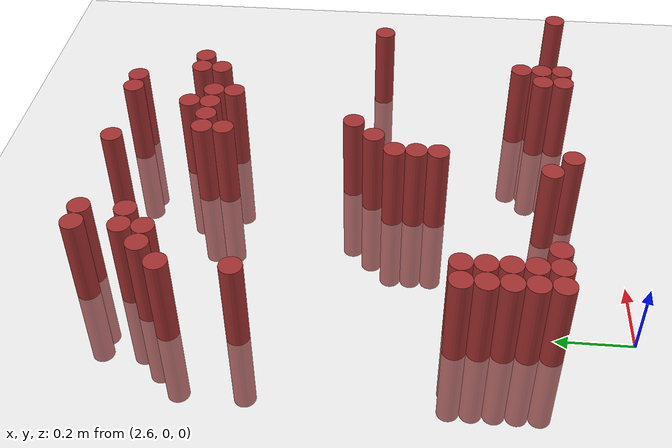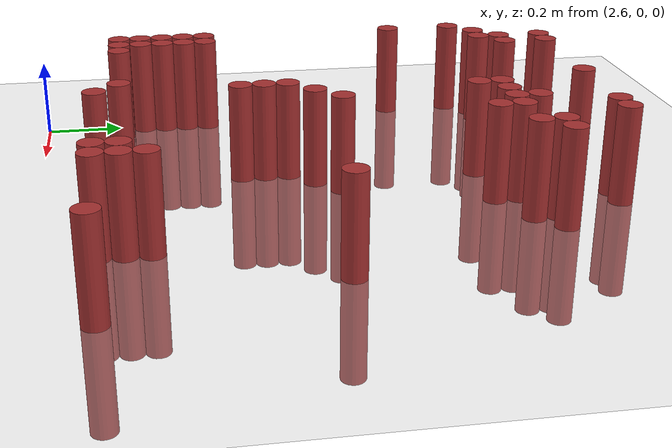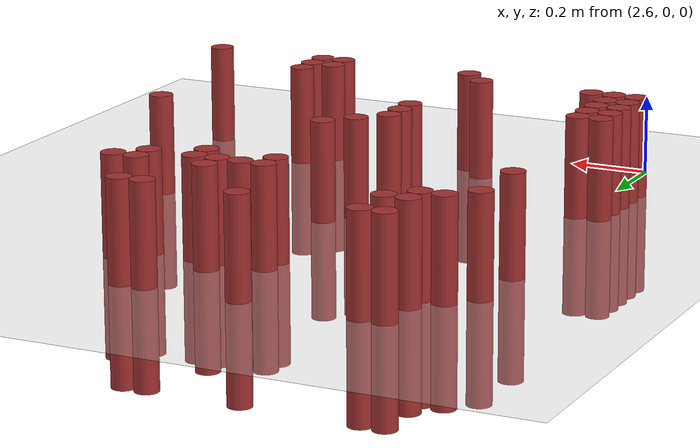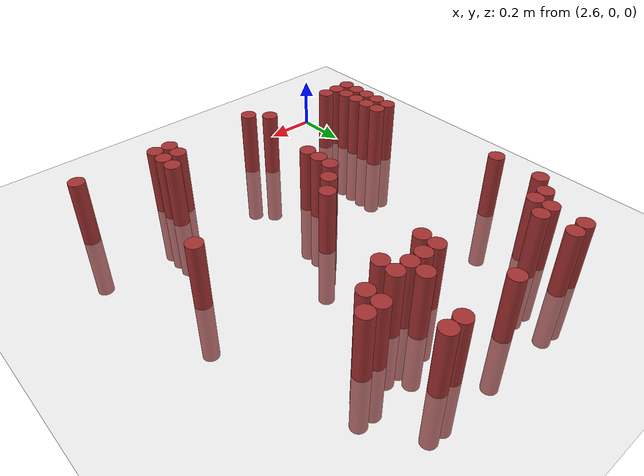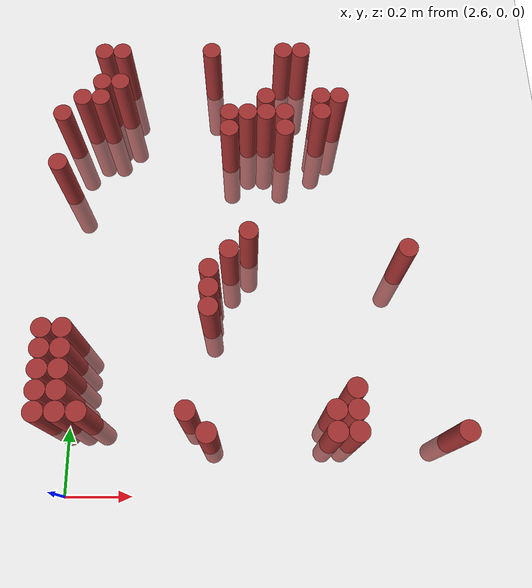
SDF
<sdf version="1.6">
 <world name="default">
  <model name="ground_plane">
   <static>1</static>
   <link name="link">
    <collision name="collision">
     <geometry><plane><normal>0 0 1</normal><size>100 100</size></plane></geometry>
     <surface><friction><ode><mu>100</mu><mu2>50</mu2></ode></friction></surface>
    </collision>
    <visual name="visual">
     <cast_shadows>0</cast_shadows>
     <geometry><plane><normal>0 0 1</normal><size>100 100</size></plane></geometry>
     <material>
      <script><uri>file://media/materials/scripts/gazebo.material</uri><name>Gazebo/Grey</name></script>
     </material>
    </visual>
   </link>
  </model>
  <model name="unit_cylinder_160">
   <static>1</static>
   <pose>2.670000 1.410000 0.000000 0.000000 0.000000 0.000000</pose>
   <link name="link">
    <inertial>
     <mass>1</mass>
     <inertia><ixx>0.145833</ixx><ixy>0</ixy><ixz>0</ixz><iyy>0.145833</iyy><iyz>0</iyz><izz>0.125</izz></inertia>
    </inertial>
    <collision name="collision">
     <geometry><cylinder><radius>0.030000</radius><length>0.5</length></cylinder></geometry>
    </collision>
    <visual name="visual">
     <geometry><cylinder><radius>0.030000</radius><length>0.5</length></cylinder></geometry>
     <material>
      <ambient>0.648000 0.192000 0.192000 1</ambient>
      <diffuse>0.648000 0.192000 0.192000 1</diffuse>
     </material>
     <material>
      <script><name>Gazebo/Grey</name><uri>file://media/materials/scripts/gazebo.material</uri></script>
     </material>
    </visual>
   </link>
  </model>
  <model name="unit_cylinder_161">
   <static>1</static>
   <pose>2.730000 1.410000 0.000000 0.000000 0.000000 0.000000</pose>
   <link name="link">
    <inertial>
     <mass>1</mass>
     <inertia><ixx>0.145833</ixx><ixy>0</ixy><ixz>0</ixz><iyy>0.145833</iyy><iyz>0</iyz><izz>0.125</izz></inertia>
    </inertial>
    <collision name="collision">
     <geometry><cylinder><radius>0.030000</radius><length>0.5</length></cylinder></geometry>
    </collision>
    <visual name="visual">
     <geometry><cylinder><radius>0.030000</radius><length>0.5</length></cylinder></geometry>
     <material>
      <ambient>0.648000 0.192000 0.192000 1</ambient>
      <diffuse>0.648000 0.192000 0.192000 1</diffuse>
     </material>
     <material>
      <script><name>Gazebo/Grey</name><uri>file://media/materials/scripts/gazebo.material</uri></script>
     </material>
    </visual>
   </link>
  </model>
  <model name="unit_cylinder_162">
   <static>1</static>
   <pose>3.030000 1.410000 0.000000 0.000000 0.000000 0.000000</pose>
   <link name="link">
    <inertial>
     <mass>1</mass>
     <inertia><ixx>0.145833</ixx><ixy>0</ixy><ixz>0</ixz><iyy>0.145833</iyy><iyz>0</iyz><izz>0.125</izz></inertia>
    </inertial>
    <collision name="collision">
     <geometry><cylinder><radius>0.030000</radius><length>0.5</length></cylinder></geometry>
    </collision>
    <visual name="visual">
     <geometry><cylinder><radius>0.030000</radius><length>0.5</length></cylinder></geometry>
     <material>
      <ambient>0.648000 0.192000 0.192000 1</ambient>
      <diffuse>0.648000 0.192000 0.192000 1</diffuse>
     </material>
     <material>
      <script><name>Gazebo/Grey</name><uri>file://media/materials/scripts/gazebo.material</uri></script>
     </material>
    </visual>
   </link>
  </model>
  <model name="unit_cylinder_163">
   <static>1</static>
   <pose>3.270000 1.410000 0.000000 0.000000 0.000000 0.000000</pose>
   <link name="link">
    <inertial>
     <mass>1</mass>
     <inertia><ixx>0.145833</ixx><ixy>0</ixy><ixz>0</ixz><iyy>0.145833</iyy><iyz>0</iyz><izz>0.125</izz></inertia>
    </inertial>
    <collision name="collision">
     <geometry><cylinder><radius>0.030000</radius><length>0.5</length></cylinder></geometry>
    </collision>
    <visual name="visual">
     <geometry><cylinder><radius>0.030000</radius><length>0.5</length></cylinder></geometry>
     <material>
      <ambient>0.648000 0.192000 0.192000 1</ambient>
      <diffuse>0.648000 0.192000 0.192000 1</diffuse>
     </material>
     <material>
      <script><name>Gazebo/Grey</name><uri>file://media/materials/scripts/gazebo.material</uri></script>
     </material>
    </visual>
   </link>
  </model>
  <model name="unit_cylinder_164">
   <static>1</static>
   <pose>3.330000 1.410000 0.000000 0.000000 0.000000 0.000000</pose>
   <link name="link">
    <inertial>
     <mass>1</mass>
     <inertia><ixx>0.145833</ixx><ixy>0</ixy><ixz>0</ixz><iyy>0.145833</iyy><iyz>0</iyz><izz>0.125</izz></inertia>
    </inertial>
    <collision name="collision">
     <geometry><cylinder><radius>0.030000</radius><length>0.5</length></cylinder></geometry>
    </collision>
    <visual name="visual">
     <geometry><cylinder><radius>0.030000</radius><length>0.5</length></cylinder></geometry>
     <material>
      <ambient>0.648000 0.192000 0.192000 1</ambient>
      <diffuse>0.648000 0.192000 0.192000 1</diffuse>
     </material>
     <material>
      <script><name>Gazebo/Grey</name><uri>file://media/materials/scripts/gazebo.material</uri></script>
     </material>
    </visual>
   </link>
  </model>
  <model name="unit_cylinder_167">
   <static>1</static>
   <pose>2.670000 1.290000 0.000000 0.000000 0.000000 0.000000</pose>
   <link name="link">
    <inertial>
     <mass>1</mass>
     <inertia><ixx>0.145833</ixx><ixy>0</ixy><ixz>0</ixz><iyy>0.145833</iyy><iyz>0</iyz><izz>0.125</izz></inertia>
    </inertial>
    <collision name="collision">
     <geometry><cylinder><radius>0.030000</radius><length>0.5</length></cylinder></geometry>
    </collision>
    <visual name="visual">
     <geometry><cylinder><radius>0.030000</radius><length>0.5</length></cylinder></geometry>
     <material>
      <ambient>0.648000 0.192000 0.192000 1</ambient>
      <diffuse>0.648000 0.192000 0.192000 1</diffuse>
     </material>
     <material>
      <script><name>Gazebo/Grey</name><uri>file://media/materials/scripts/gazebo.material</uri></script>
     </material>
    </visual>
   </link>
  </model>
  <model name="unit_cylinder_168">
   <static>1</static>
   <pose>2.730000 1.290000 0.000000 0.000000 0.000000 0.000000</pose>
   <link name="link">
    <inertial>
     <mass>1</mass>
     <inertia><ixx>0.145833</ixx><ixy>0</ixy><ixz>0</ixz><iyy>0.145833</iyy><iyz>0</iyz><izz>0.125</izz></inertia>
    </inertial>
    <collision name="collision">
     <geometry><cylinder><radius>0.030000</radius><length>0.5</length></cylinder></geometry>
    </collision>
    <visual name="visual">
     <geometry><cylinder><radius>0.030000</radius><length>0.5</length></cylinder></geometry>
     <material>
      <ambient>0.648000 0.192000 0.192000 1</ambient>
      <diffuse>0.648000 0.192000 0.192000 1</diffuse>
     </material>
     <material>
      <script><name>Gazebo/Grey</name><uri>file://media/materials/scripts/gazebo.material</uri></script>
     </material>
    </visual>
   </link>
  </model>
  <model name="unit_cylinder_169">
   <static>1</static>
   <pose>2.610000 1.230000 0.000000 0.000000 0.000000 0.000000</pose>
   <link name="link">
    <inertial>
     <mass>1</mass>
     <inertia><ixx>0.145833</ixx><ixy>0</ixy><ixz>0</ixz><iyy>0.145833</iyy><iyz>0</iyz><izz>0.125</izz></inertia>
    </inertial>
    <collision name="collision">
     <geometry><cylinder><radius>0.030000</radius><length>0.5</length></cylinder></geometry>
    </collision>
    <visual name="visual">
     <geometry><cylinder><radius>0.030000</radius><length>0.5</length></cylinder></geometry>
     <material>
      <ambient>0.648000 0.192000 0.192000 1</ambient>
      <diffuse>0.648000 0.192000 0.192000 1</diffuse>
     </material>
     <material>
      <script><name>Gazebo/Grey</name><uri>file://media/materials/scripts/gazebo.material</uri></script>
     </material>
    </visual>
   </link>
  </model>
  <model name="unit_cylinder_170">
   <static>1</static>
   <pose>2.670000 1.230000 0.000000 0.000000 0.000000 0.000000</pose>
   <link name="link">
    <inertial>
     <mass>1</mass>
     <inertia><ixx>0.145833</ixx><ixy>0</ixy><ixz>0</ixz><iyy>0.145833</iyy><iyz>0</iyz><izz>0.125</izz></inertia>
    </inertial>
    <collision name="collision">
     <geometry><cylinder><radius>0.030000</radius><length>0.5</length></cylinder></geometry>
    </collision>
    <visual name="visual">
     <geometry><cylinder><radius>0.030000</radius><length>0.5</length></cylinder></geometry>
     <material>
      <ambient>0.648000 0.192000 0.192000 1</ambient>
      <diffuse>0.648000 0.192000 0.192000 1</diffuse>
     </material>
     <material>
      <script><name>Gazebo/Grey</name><uri>file://media/materials/scripts/gazebo.material</uri></script>
     </material>
    </visual>
   </link>
  </model>
  <model name="unit_cylinder_171">
   <static>1</static>
   <pose>3.210000 1.230000 0.000000 0.000000 0.000000 0.000000</pose>
   <link name="link">
    <inertial>
     <mass>1</mass>
     <inertia><ixx>0.145833</ixx><ixy>0</ixy><ixz>0</ixz><iyy>0.145833</iyy><iyz>0</iyz><izz>0.125</izz></inertia>
    </inertial>
    <collision name="collision">
     <geometry><cylinder><radius>0.030000</radius><length>0.5</length></cylinder></geometry>
    </collision>
    <visual name="visual">
     <geometry><cylinder><radius>0.030000</radius><length>0.5</length></cylinder></geometry>
     <material>
      <ambient>0.648000 0.192000 0.192000 1</ambient>
      <diffuse>0.648000 0.192000 0.192000 1</diffuse>
     </material>
     <material>
      <script><name>Gazebo/Grey</name><uri>file://media/materials/scripts/gazebo.material</uri></script>
     </material>
    </visual>
   </link>
  </model>
  <model name="unit_cylinder_172">
   <static>1</static>
   <pose>3.390000 1.230000 0.000000 0.000000 0.000000 0.000000</pose>
   <link name="link">
    <inertial>
     <mass>1</mass>
     <inertia><ixx>0.145833</ixx><ixy>0</ixy><ixz>0</ixz><iyy>0.145833</iyy><iyz>0</iyz><izz>0.125</izz></inertia>
    </inertial>
    <collision name="collision">
     <geometry><cylinder><radius>0.030000</radius><length>0.5</length></cylinder></geometry>
    </collision>
    <visual name="visual">
     <geometry><cylinder><radius>0.030000</radius><length>0.5</length></cylinder></geometry>
     <material>
      <ambient>0.648000 0.192000 0.192000 1</ambient>
      <diffuse>0.648000 0.192000 0.192000 1</diffuse>
     </material>
     <material>
      <script><name>Gazebo/Grey</name><uri>file://media/materials/scripts/gazebo.material</uri></script>
     </material>
    </visual>
   </link>
  </model>
  <model name="unit_cylinder_173">
   <static>1</static>
   <pose>3.450000 1.230000 0.000000 0.000000 0.000000 0.000000</pose>
   <link name="link">
    <inertial>
     <mass>1</mass>
     <inertia><ixx>0.145833</ixx><ixy>0</ixy><ixz>0</ixz><iyy>0.145833</iyy><iyz>0</iyz><izz>0.125</izz></inertia>
    </inertial>
    <collision name="collision">
     <geometry><cylinder><radius>0.030000</radius><length>0.5</length></cylinder></geometry>
    </collision>
    <visual name="visual">
     <geometry><cylinder><radius>0.030000</radius><length>0.5</length></cylinder></geometry>
     <material>
      <ambient>0.648000 0.192000 0.192000 1</ambient>
      <diffuse>0.648000 0.192000 0.192000 1</diffuse>
     </material>
     <material>
      <script><name>Gazebo/Grey</name><uri>file://media/materials/scripts/gazebo.material</uri></script>
     </material>
    </visual>
   </link>
  </model>
  <model name="unit_cylinder_174">
   <static>1</static>
   <pose>2.550000 1.170000 0.000000 0.000000 0.000000 0.000000</pose>
   <link name="link">
    <inertial>
     <mass>1</mass>
     <inertia><ixx>0.145833</ixx><ixy>0</ixy><ixz>0</ixz><iyy>0.145833</iyy><iyz>0</iyz><izz>0.125</izz></inertia>
    </inertial>
    <collision name="collision">
     <geometry><cylinder><radius>0.030000</radius><length>0.5</length></cylinder></geometry>
    </collision>
    <visual name="visual">
     <geometry><cylinder><radius>0.030000</radius><length>0.5</length></cylinder></geometry>
     <material>
      <ambient>0.648000 0.192000 0.192000 1</ambient>
      <diffuse>0.648000 0.192000 0.192000 1</diffuse>
     </material>
     <material>
      <script><name>Gazebo/Grey</name><uri>file://media/materials/scripts/gazebo.material</uri></script>
     </material>
    </visual>
   </link>
  </model>
  <model name="unit_cylinder_175">
   <static>1</static>
   <pose>3.090000 1.170000 0.000000 0.000000 0.000000 0.000000</pose>
   <link name="link">
    <inertial>
     <mass>1</mass>
     <inertia><ixx>0.145833</ixx><ixy>0</ixy><ixz>0</ixz><iyy>0.145833</iyy><iyz>0</iyz><izz>0.125</izz></inertia>
    </inertial>
    <collision name="collision">
     <geometry><cylinder><radius>0.030000</radius><length>0.5</length></cylinder></geometry>
    </collision>
    <visual name="visual">
     <geometry><cylinder><radius>0.030000</radius><length>0.5</length></cylinder></geometry>
     <material>
      <ambient>0.648000 0.192000 0.192000 1</ambient>
      <diffuse>0.648000 0.192000 0.192000 1</diffuse>
     </material>
     <material>
      <script><name>Gazebo/Grey</name><uri>file://media/materials/scripts/gazebo.material</uri></script>
     </material>
    </visual>
   </link>
  </model>
  <model name="unit_cylinder_176">
   <static>1</static>
   <pose>3.150000 1.170000 0.000000 0.000000 0.000000 0.000000</pose>
   <link name="link">
    <inertial>
     <mass>1</mass>
     <inertia><ixx>0.145833</ixx><ixy>0</ixy><ixz>0</ixz><iyy>0.145833</iyy><iyz>0</iyz><izz>0.125</izz></inertia>
    </inertial>
    <collision name="collision">
     <geometry><cylinder><radius>0.030000</radius><length>0.5</length></cylinder></geometry>
    </collision>
    <visual name="visual">
     <geometry><cylinder><radius>0.030000</radius><length>0.5</length></cylinder></geometry>
     <material>
      <ambient>0.648000 0.192000 0.192000 1</ambient>
      <diffuse>0.648000 0.192000 0.192000 1</diffuse>
     </material>
     <material>
      <script><name>Gazebo/Grey</name><uri>file://media/materials/scripts/gazebo.material</uri></script>
     </material>
    </visual>
   </link>
  </model>
  <model name="unit_cylinder_177">
   <static>1</static>
   <pose>3.210000 1.170000 0.000000 0.000000 0.000000 0.000000</pose>
   <link name="link">
    <inertial>
     <mass>1</mass>
     <inertia><ixx>0.145833</ixx><ixy>0</ixy><ixz>0</ixz><iyy>0.145833</iyy><iyz>0</iyz><izz>0.125</izz></inertia>
    </inertial>
    <collision name="collision">
     <geometry><cylinder><radius>0.030000</radius><length>0.5</length></cylinder></geometry>
    </collision>
    <visual name="visual">
     <geometry><cylinder><radius>0.030000</radius><length>0.5</length></cylinder></geometry>
     <material>
      <ambient>0.648000 0.192000 0.192000 1</ambient>
      <diffuse>0.648000 0.192000 0.192000 1</diffuse>
     </material>
     <material>
      <script><name>Gazebo/Grey</name><uri>file://media/materials/scripts/gazebo.material</uri></script>
     </material>
    </visual>
   </link>
  </model>
  <model name="unit_cylinder_178">
   <static>1</static>
   <pose>3.270000 1.170000 0.000000 0.000000 0.000000 0.000000</pose>
   <link name="link">
    <inertial>
     <mass>1</mass>
     <inertia><ixx>0.145833</ixx><ixy>0</ixy><ixz>0</ixz><iyy>0.145833</iyy><iyz>0</iyz><izz>0.125</izz></inertia>
    </inertial>
    <collision name="collision">
     <geometry><cylinder><radius>0.030000</radius><length>0.5</length></cylinder></geometry>
    </collision>
    <visual name="visual">
     <geometry><cylinder><radius>0.030000</radius><length>0.5</length></cylinder></geometry>
     <material>
      <ambient>0.648000 0.192000 0.192000 1</ambient>
      <diffuse>0.648000 0.192000 0.192000 1</diffuse>
     </material>
     <material>
      <script><name>Gazebo/Grey</name><uri>file://media/materials/scripts/gazebo.material</uri></script>
     </material>
    </visual>
   </link>
  </model>
  <model name="unit_cylinder_179">
   <static>1</static>
   <pose>3.390000 1.170000 0.000000 0.000000 0.000000 0.000000</pose>
   <link name="link">
    <inertial>
     <mass>1</mass>
     <inertia><ixx>0.145833</ixx><ixy>0</ixy><ixz>0</ixz><iyy>0.145833</iyy><iyz>0</iyz><izz>0.125</izz></inertia>
    </inertial>
    <collision name="collision">
     <geometry><cylinder><radius>0.030000</radius><length>0.5</length></cylinder></geometry>
    </collision>
    <visual name="visual">
     <geometry><cylinder><radius>0.030000</radius><length>0.5</length></cylinder></geometry>
     <material>
      <ambient>0.648000 0.192000 0.192000 1</ambient>
      <diffuse>0.648000 0.192000 0.192000 1</diffuse>
     </material>
     <material>
      <script><name>Gazebo/Grey</name><uri>file://media/materials/scripts/gazebo.material</uri></script>
     </material>
    </visual>
   </link>
  </model>
  <model name="unit_cylinder_180">
   <static>1</static>
   <pose>3.090000 1.110000 0.000000 0.000000 0.000000 0.000000</pose>
   <link name="link">
    <inertial>
     <mass>1</mass>
     <inertia><ixx>0.145833</ixx><ixy>0</ixy><ixz>0</ixz><iyy>0.145833</iyy><iyz>0</iyz><izz>0.125</izz></inertia>
    </inertial>
    <collision name="collision">
     <geometry><cylinder><radius>0.030000</radius><length>0.5</length></cylinder></geometry>
    </collision>
    <visual name="visual">
     <geometry><cylinder><radius>0.030000</radius><length>0.5</length></cylinder></geometry>
     <material>
      <ambient>0.648000 0.192000 0.192000 1</ambient>
      <diffuse>0.648000 0.192000 0.192000 1</diffuse>
     </material>
     <material>
      <script><name>Gazebo/Grey</name><uri>file://media/materials/scripts/gazebo.material</uri></script>
     </material>
    </visual>
   </link>
  </model>
  <model name="unit_cylinder_181">
   <static>1</static>
   <pose>3.270000 1.110000 0.000000 0.000000 0.000000 0.000000</pose>
   <link name="link">
    <inertial>
     <mass>1</mass>
     <inertia><ixx>0.145833</ixx><ixy>0</ixy><ixz>0</ixz><iyy>0.145833</iyy><iyz>0</iyz><izz>0.125</izz></inertia>
    </inertial>
    <collision name="collision">
     <geometry><cylinder><radius>0.030000</radius><length>0.5</length></cylinder></geometry>
    </collision>
    <visual name="visual">
     <geometry><cylinder><radius>0.030000</radius><length>0.5</length></cylinder></geometry>
     <material>
      <ambient>0.648000 0.192000 0.192000 1</ambient>
      <diffuse>0.648000 0.192000 0.192000 1</diffuse>
     </material>
     <material>
      <script><name>Gazebo/Grey</name><uri>file://media/materials/scripts/gazebo.material</uri></script>
     </material>
    </visual>
   </link>
  </model>
  <model name="unit_cylinder_185">
   <static>1</static>
   <pose>2.550000 0.990000 0.000000 0.000000 0.000000 0.000000</pose>
   <link name="link">
    <inertial>
     <mass>1</mass>
     <inertia><ixx>0.145833</ixx><ixy>0</ixy><ixz>0</ixz><iyy>0.145833</iyy><iyz>0</iyz><izz>0.125</izz></inertia>
    </inertial>
    <collision name="collision">
     <geometry><cylinder><radius>0.030000</radius><length>0.5</length></cylinder></geometry>
    </collision>
    <visual name="visual">
     <geometry><cylinder><radius>0.030000</radius><length>0.5</length></cylinder></geometry>
     <material>
      <ambient>0.648000 0.192000 0.192000 1</ambient>
      <diffuse>0.648000 0.192000 0.192000 1</diffuse>
     </material>
     <material>
      <script><name>Gazebo/Grey</name><uri>file://media/materials/scripts/gazebo.material</uri></script>
     </material>
    </visual>
   </link>
  </model>
  <model name="unit_cylinder_188">
   <static>1</static>
   <pose>3.150000 0.750000 0.000000 0.000000 0.000000 0.000000</pose>
   <link name="link">
    <inertial>
     <mass>1</mass>
     <inertia><ixx>0.145833</ixx><ixy>0</ixy><ixz>0</ixz><iyy>0.145833</iyy><iyz>0</iyz><izz>0.125</izz></inertia>
    </inertial>
    <collision name="collision">
     <geometry><cylinder><radius>0.030000</radius><length>0.5</length></cylinder></geometry>
    </collision>
    <visual name="visual">
     <geometry><cylinder><radius>0.030000</radius><length>0.5</length></cylinder></geometry>
     <material>
      <ambient>0.648000 0.192000 0.192000 1</ambient>
      <diffuse>0.648000 0.192000 0.192000 1</diffuse>
     </material>
     <material>
      <script><name>Gazebo/Grey</name><uri>file://media/materials/scripts/gazebo.material</uri></script>
     </material>
    </visual>
   </link>
  </model>
  <model name="unit_cylinder_189">
   <static>1</static>
   <pose>3.090000 0.690000 0.000000 0.000000 0.000000 0.000000</pose>
   <link name="link">
    <inertial>
     <mass>1</mass>
     <inertia><ixx>0.145833</ixx><ixy>0</ixy><ixz>0</ixz><iyy>0.145833</iyy><iyz>0</iyz><izz>0.125</izz></inertia>
    </inertial>
    <collision name="collision">
     <geometry><cylinder><radius>0.030000</radius><length>0.5</length></cylinder></geometry>
    </collision>
    <visual name="visual">
     <geometry><cylinder><radius>0.030000</radius><length>0.5</length></cylinder></geometry>
     <material>
      <ambient>0.648000 0.192000 0.192000 1</ambient>
      <diffuse>0.648000 0.192000 0.192000 1</diffuse>
     </material>
     <material>
      <script><name>Gazebo/Grey</name><uri>file://media/materials/scripts/gazebo.material</uri></script>
     </material>
    </visual>
   </link>
  </model>
  <model name="unit_cylinder_190">
   <static>1</static>
   <pose>3.630000 0.690000 0.000000 0.000000 0.000000 0.000000</pose>
   <link name="link">
    <inertial>
     <mass>1</mass>
     <inertia><ixx>0.145833</ixx><ixy>0</ixy><ixz>0</ixz><iyy>0.145833</iyy><iyz>0</iyz><izz>0.125</izz></inertia>
    </inertial>
    <collision name="collision">
     <geometry><cylinder><radius>0.030000</radius><length>0.5</length></cylinder></geometry>
    </collision>
    <visual name="visual">
     <geometry><cylinder><radius>0.030000</radius><length>0.5</length></cylinder></geometry>
     <material>
      <ambient>0.648000 0.192000 0.192000 1</ambient>
      <diffuse>0.648000 0.192000 0.192000 1</diffuse>
     </material>
     <material>
      <script><name>Gazebo/Grey</name><uri>file://media/materials/scripts/gazebo.material</uri></script>
     </material>
    </visual>
   </link>
  </model>
  <model name="unit_cylinder_191">
   <static>1</static>
   <pose>3.030000 0.630000 0.000000 0.000000 0.000000 0.000000</pose>
   <link name="link">
    <inertial>
     <mass>1</mass>
     <inertia><ixx>0.145833</ixx><ixy>0</ixy><ixz>0</ixz><iyy>0.145833</iyy><iyz>0</iyz><izz>0.125</izz></inertia>
    </inertial>
    <collision name="collision">
     <geometry><cylinder><radius>0.030000</radius><length>0.5</length></cylinder></geometry>
    </collision>
    <visual name="visual">
     <geometry><cylinder><radius>0.030000</radius><length>0.5</length></cylinder></geometry>
     <material>
      <ambient>0.648000 0.192000 0.192000 1</ambient>
      <diffuse>0.648000 0.192000 0.192000 1</diffuse>
     </material>
     <material>
      <script><name>Gazebo/Grey</name><uri>file://media/materials/scripts/gazebo.material</uri></script>
     </material>
    </visual>
   </link>
  </model>
  <model name="unit_cylinder_192">
   <static>1</static>
   <pose>3.030000 0.570000 0.000000 0.000000 0.000000 0.000000</pose>
   <link name="link">
    <inertial>
     <mass>1</mass>
     <inertia><ixx>0.145833</ixx><ixy>0</ixy><ixz>0</ixz><iyy>0.145833</iyy><iyz>0</iyz><izz>0.125</izz></inertia>
    </inertial>
    <collision name="collision">
     <geometry><cylinder><radius>0.030000</radius><length>0.5</length></cylinder></geometry>
    </collision>
    <visual name="visual">
     <geometry><cylinder><radius>0.030000</radius><length>0.5</length></cylinder></geometry>
     <material>
      <ambient>0.648000 0.192000 0.192000 1</ambient>
      <diffuse>0.648000 0.192000 0.192000 1</diffuse>
     </material>
     <material>
      <script><name>Gazebo/Grey</name><uri>file://media/materials/scripts/gazebo.material</uri></script>
     </material>
    </visual>
   </link>
  </model>
  <model name="unit_cylinder_194">
   <static>1</static>
   <pose>3.030000 0.510000 0.000000 0.000000 0.000000 0.000000</pose>
   <link name="link">
    <inertial>
     <mass>1</mass>
     <inertia><ixx>0.145833</ixx><ixy>0</ixy><ixz>0</ixz><iyy>0.145833</iyy><iyz>0</iyz><izz>0.125</izz></inertia>
    </inertial>
    <collision name="collision">
     <geometry><cylinder><radius>0.030000</radius><length>0.5</length></cylinder></geometry>
    </collision>
    <visual name="visual">
     <geometry><cylinder><radius>0.030000</radius><length>0.5</length></cylinder></geometry>
     <material>
      <ambient>0.648000 0.192000 0.192000 1</ambient>
      <diffuse>0.648000 0.192000 0.192000 1</diffuse>
     </material>
     <material>
      <script><name>Gazebo/Grey</name><uri>file://media/materials/scripts/gazebo.material</uri></script>
     </material>
    </visual>
   </link>
  </model>
  <model name="unit_cylinder_196">
   <static>1</static>
   <pose>2.550000 0.450000 0.000000 0.000000 0.000000 0.000000</pose>
   <link name="link">
    <inertial>
     <mass>1</mass>
     <inertia><ixx>0.145833</ixx><ixy>0</ixy><ixz>0</ixz><iyy>0.145833</iyy><iyz>0</iyz><izz>0.125</izz></inertia>
    </inertial>
    <collision name="collision">
     <geometry><cylinder><radius>0.030000</radius><length>0.5</length></cylinder></geometry>
    </collision>
    <visual name="visual">
     <geometry><cylinder><radius>0.030000</radius><length>0.5</length></cylinder></geometry>
     <material>
      <ambient>0.648000 0.192000 0.192000 1</ambient>
      <diffuse>0.648000 0.192000 0.192000 1</diffuse>
     </material>
     <material>
      <script><name>Gazebo/Grey</name><uri>file://media/materials/scripts/gazebo.material</uri></script>
     </material>
    </visual>
   </link>
  </model>
  <model name="unit_cylinder_197">
   <static>1</static>
   <pose>2.610000 0.450000 0.000000 0.000000 0.000000 0.000000</pose>
   <link name="link">
    <inertial>
     <mass>1</mass>
     <inertia><ixx>0.145833</ixx><ixy>0</ixy><ixz>0</ixz><iyy>0.145833</iyy><iyz>0</iyz><izz>0.125</izz></inertia>
    </inertial>
    <collision name="collision">
     <geometry><cylinder><radius>0.030000</radius><length>0.5</length></cylinder></geometry>
    </collision>
    <visual name="visual">
     <geometry><cylinder><radius>0.030000</radius><length>0.5</length></cylinder></geometry>
     <material>
      <ambient>0.648000 0.192000 0.192000 1</ambient>
      <diffuse>0.648000 0.192000 0.192000 1</diffuse>
     </material>
     <material>
      <script><name>Gazebo/Grey</name><uri>file://media/materials/scripts/gazebo.material</uri></script>
     </material>
    </visual>
   </link>
  </model>
  <model name="unit_cylinder_200">
   <static>1</static>
   <pose>2.550000 0.390000 0.000000 0.000000 0.000000 0.000000</pose>
   <link name="link">
    <inertial>
     <mass>1</mass>
     <inertia><ixx>0.145833</ixx><ixy>0</ixy><ixz>0</ixz><iyy>0.145833</iyy><iyz>0</iyz><izz>0.125</izz></inertia>
    </inertial>
    <collision name="collision">
     <geometry><cylinder><radius>0.030000</radius><length>0.5</length></cylinder></geometry>
    </collision>
    <visual name="visual">
     <geometry><cylinder><radius>0.030000</radius><length>0.5</length></cylinder></geometry>
     <material>
      <ambient>0.648000 0.192000 0.192000 1</ambient>
      <diffuse>0.648000 0.192000 0.192000 1</diffuse>
     </material>
     <material>
      <script><name>Gazebo/Grey</name><uri>file://media/materials/scripts/gazebo.material</uri></script>
     </material>
    </visual>
   </link>
  </model>
  <model name="unit_cylinder_201">
   <static>1</static>
   <pose>2.610000 0.390000 0.000000 0.000000 0.000000 0.000000</pose>
   <link name="link">
    <inertial>
     <mass>1</mass>
     <inertia><ixx>0.145833</ixx><ixy>0</ixy><ixz>0</ixz><iyy>0.145833</iyy><iyz>0</iyz><izz>0.125</izz></inertia>
    </inertial>
    <collision name="collision">
     <geometry><cylinder><radius>0.030000</radius><length>0.5</length></cylinder></geometry>
    </collision>
    <visual name="visual">
     <geometry><cylinder><radius>0.030000</radius><length>0.5</length></cylinder></geometry>
     <material>
      <ambient>0.648000 0.192000 0.192000 1</ambient>
      <diffuse>0.648000 0.192000 0.192000 1</diffuse>
     </material>
     <material>
      <script><name>Gazebo/Grey</name><uri>file://media/materials/scripts/gazebo.material</uri></script>
     </material>
    </visual>
   </link>
  </model>
  <model name="unit_cylinder_203">
   <static>1</static>
   <pose>2.550000 0.330000 0.000000 0.000000 0.000000 0.000000</pose>
   <link name="link">
    <inertial>
     <mass>1</mass>
     <inertia><ixx>0.145833</ixx><ixy>0</ixy><ixz>0</ixz><iyy>0.145833</iyy><iyz>0</iyz><izz>0.125</izz></inertia>
    </inertial>
    <collision name="collision">
     <geometry><cylinder><radius>0.030000</radius><length>0.5</length></cylinder></geometry>
    </collision>
    <visual name="visual">
     <geometry><cylinder><radius>0.030000</radius><length>0.5</length></cylinder></geometry>
     <material>
      <ambient>0.648000 0.192000 0.192000 1</ambient>
      <diffuse>0.648000 0.192000 0.192000 1</diffuse>
     </material>
     <material>
      <script><name>Gazebo/Grey</name><uri>file://media/materials/scripts/gazebo.material</uri></script>
     </material>
    </visual>
   </link>
  </model>
  <model name="unit_cylinder_204">
   <static>1</static>
   <pose>2.610000 0.330000 0.000000 0.000000 0.000000 0.000000</pose>
   <link name="link">
    <inertial>
     <mass>1</mass>
     <inertia><ixx>0.145833</ixx><ixy>0</ixy><ixz>0</ixz><iyy>0.145833</iyy><iyz>0</iyz><izz>0.125</izz></inertia>
    </inertial>
    <collision name="collision">
     <geometry><cylinder><radius>0.030000</radius><length>0.5</length></cylinder></geometry>
    </collision>
    <visual name="visual">
     <geometry><cylinder><radius>0.030000</radius><length>0.5</length></cylinder></geometry>
     <material>
      <ambient>0.648000 0.192000 0.192000 1</ambient>
      <diffuse>0.648000 0.192000 0.192000 1</diffuse>
     </material>
     <material>
      <script><name>Gazebo/Grey</name><uri>file://media/materials/scripts/gazebo.material</uri></script>
     </material>
    </visual>
   </link>
  </model>
  <model name="unit_cylinder_208">
   <static>1</static>
   <pose>2.550000 0.270000 0.000000 0.000000 0.000000 0.000000</pose>
   <link name="link">
    <inertial>
     <mass>1</mass>
     <inertia><ixx>0.145833</ixx><ixy>0</ixy><ixz>0</ixz><iyy>0.145833</iyy><iyz>0</iyz><izz>0.125</izz></inertia>
    </inertial>
    <collision name="collision">
     <geometry><cylinder><radius>0.030000</radius><length>0.5</length></cylinder></geometry>
    </collision>
    <visual name="visual">
     <geometry><cylinder><radius>0.030000</radius><length>0.5</length></cylinder></geometry>
     <material>
      <ambient>0.648000 0.192000 0.192000 1</ambient>
      <diffuse>0.648000 0.192000 0.192000 1</diffuse>
     </material>
     <material>
      <script><name>Gazebo/Grey</name><uri>file://media/materials/scripts/gazebo.material</uri></script>
     </material>
    </visual>
   </link>
  </model>
  <model name="unit_cylinder_209">
   <static>1</static>
   <pose>2.610000 0.270000 0.000000 0.000000 0.000000 0.000000</pose>
   <link name="link">
    <inertial>
     <mass>1</mass>
     <inertia><ixx>0.145833</ixx><ixy>0</ixy><ixz>0</ixz><iyy>0.145833</iyy><iyz>0</iyz><izz>0.125</izz></inertia>
    </inertial>
    <collision name="collision">
     <geometry><cylinder><radius>0.030000</radius><length>0.5</length></cylinder></geometry>
    </collision>
    <visual name="visual">
     <geometry><cylinder><radius>0.030000</radius><length>0.5</length></cylinder></geometry>
     <material>
      <ambient>0.648000 0.192000 0.192000 1</ambient>
      <diffuse>0.648000 0.192000 0.192000 1</diffuse>
     </material>
     <material>
      <script><name>Gazebo/Grey</name><uri>file://media/materials/scripts/gazebo.material</uri></script>
     </material>
    </visual>
   </link>
  </model>
  <model name="unit_cylinder_210">
   <static>1</static>
   <pose>3.450000 0.270000 0.000000 0.000000 0.000000 0.000000</pose>
   <link name="link">
    <inertial>
     <mass>1</mass>
     <inertia><ixx>0.145833</ixx><ixy>0</ixy><ixz>0</ixz><iyy>0.145833</iyy><iyz>0</iyz><izz>0.125</izz></inertia>
    </inertial>
    <collision name="collision">
     <geometry><cylinder><radius>0.030000</radius><length>0.5</length></cylinder></geometry>
    </collision>
    <visual name="visual">
     <geometry><cylinder><radius>0.030000</radius><length>0.5</length></cylinder></geometry>
     <material>
      <ambient>0.648000 0.192000 0.192000 1</ambient>
      <diffuse>0.648000 0.192000 0.192000 1</diffuse>
     </material>
     <material>
      <script><name>Gazebo/Grey</name><uri>file://media/materials/scripts/gazebo.material</uri></script>
     </material>
    </visual>
   </link>
  </model>
  <model name="unit_cylinder_212">
   <static>1</static>
   <pose>2.550000 0.210000 0.000000 0.000000 0.000000 0.000000</pose>
   <link name="link">
    <inertial>
     <mass>1</mass>
     <inertia><ixx>0.145833</ixx><ixy>0</ixy><ixz>0</ixz><iyy>0.145833</iyy><iyz>0</iyz><izz>0.125</izz></inertia>
    </inertial>
    <collision name="collision">
     <geometry><cylinder><radius>0.030000</radius><length>0.5</length></cylinder></geometry>
    </collision>
    <visual name="visual">
     <geometry><cylinder><radius>0.030000</radius><length>0.5</length></cylinder></geometry>
     <material>
      <ambient>0.648000 0.192000 0.192000 1</ambient>
      <diffuse>0.648000 0.192000 0.192000 1</diffuse>
     </material>
     <material>
      <script><name>Gazebo/Grey</name><uri>file://media/materials/scripts/gazebo.material</uri></script>
     </material>
    </visual>
   </link>
  </model>
  <model name="unit_cylinder_213">
   <static>1</static>
   <pose>2.610000 0.210000 0.000000 0.000000 0.000000 0.000000</pose>
   <link name="link">
    <inertial>
     <mass>1</mass>
     <inertia><ixx>0.145833</ixx><ixy>0</ixy><ixz>0</ixz><iyy>0.145833</iyy><iyz>0</iyz><izz>0.125</izz></inertia>
    </inertial>
    <collision name="collision">
     <geometry><cylinder><radius>0.030000</radius><length>0.5</length></cylinder></geometry>
    </collision>
    <visual name="visual">
     <geometry><cylinder><radius>0.030000</radius><length>0.5</length></cylinder></geometry>
     <material>
      <ambient>0.648000 0.192000 0.192000 1</ambient>
      <diffuse>0.648000 0.192000 0.192000 1</diffuse>
     </material>
     <material>
      <script><name>Gazebo/Grey</name><uri>file://media/materials/scripts/gazebo.material</uri></script>
     </material>
    </visual>
   </link>
  </model>
  <model name="unit_cylinder_214">
   <static>1</static>
   <pose>2.670000 0.210000 0.000000 0.000000 0.000000 0.000000</pose>
   <link name="link">
    <inertial>
     <mass>1</mass>
     <inertia><ixx>0.145833</ixx><ixy>0</ixy><ixz>0</ixz><iyy>0.145833</iyy><iyz>0</iyz><izz>0.125</izz></inertia>
    </inertial>
    <collision name="collision">
     <geometry><cylinder><radius>0.030000</radius><length>0.5</length></cylinder></geometry>
    </collision>
    <visual name="visual">
     <geometry><cylinder><radius>0.030000</radius><length>0.5</length></cylinder></geometry>
     <material>
      <ambient>0.648000 0.192000 0.192000 1</ambient>
      <diffuse>0.648000 0.192000 0.192000 1</diffuse>
     </material>
     <material>
      <script><name>Gazebo/Grey</name><uri>file://media/materials/scripts/gazebo.material</uri></script>
     </material>
    </visual>
   </link>
  </model>
  <model name="unit_cylinder_215">
   <static>1</static>
   <pose>2.970000 0.210000 0.000000 0.000000 0.000000 0.000000</pose>
   <link name="link">
    <inertial>
     <mass>1</mass>
     <inertia><ixx>0.145833</ixx><ixy>0</ixy><ixz>0</ixz><iyy>0.145833</iyy><iyz>0</iyz><izz>0.125</izz></inertia>
    </inertial>
    <collision name="collision">
     <geometry><cylinder><radius>0.030000</radius><length>0.5</length></cylinder></geometry>
    </collision>
    <visual name="visual">
     <geometry><cylinder><radius>0.030000</radius><length>0.5</length></cylinder></geometry>
     <material>
      <ambient>0.648000 0.192000 0.192000 1</ambient>
      <diffuse>0.648000 0.192000 0.192000 1</diffuse>
     </material>
     <material>
      <script><name>Gazebo/Grey</name><uri>file://media/materials/scripts/gazebo.material</uri></script>
     </material>
    </visual>
   </link>
  </model>
  <model name="unit_cylinder_216">
   <static>1</static>
   <pose>3.390000 0.210000 0.000000 0.000000 0.000000 0.000000</pose>
   <link name="link">
    <inertial>
     <mass>1</mass>
     <inertia><ixx>0.145833</ixx><ixy>0</ixy><ixz>0</ixz><iyy>0.145833</iyy><iyz>0</iyz><izz>0.125</izz></inertia>
    </inertial>
    <collision name="collision">
     <geometry><cylinder><radius>0.030000</radius><length>0.5</length></cylinder></geometry>
    </collision>
    <visual name="visual">
     <geometry><cylinder><radius>0.030000</radius><length>0.5</length></cylinder></geometry>
     <material>
      <ambient>0.648000 0.192000 0.192000 1</ambient>
      <diffuse>0.648000 0.192000 0.192000 1</diffuse>
     </material>
     <material>
      <script><name>Gazebo/Grey</name><uri>file://media/materials/scripts/gazebo.material</uri></script>
     </material>
    </visual>
   </link>
  </model>
  <model name="unit_cylinder_217">
   <static>1</static>
   <pose>3.450000 0.210000 0.000000 0.000000 0.000000 0.000000</pose>
   <link name="link">
    <inertial>
     <mass>1</mass>
     <inertia><ixx>0.145833</ixx><ixy>0</ixy><ixz>0</ixz><iyy>0.145833</iyy><iyz>0</iyz><izz>0.125</izz></inertia>
    </inertial>
    <collision name="collision">
     <geometry><cylinder><radius>0.030000</radius><length>0.5</length></cylinder></geometry>
    </collision>
    <visual name="visual">
     <geometry><cylinder><radius>0.030000</radius><length>0.5</length></cylinder></geometry>
     <material>
      <ambient>0.648000 0.192000 0.192000 1</ambient>
      <diffuse>0.648000 0.192000 0.192000 1</diffuse>
     </material>
     <material>
      <script><name>Gazebo/Grey</name><uri>file://media/materials/scripts/gazebo.material</uri></script>
     </material>
    </visual>
   </link>
  </model>
  <model name="unit_cylinder_223">
   <static>1</static>
   <pose>3.030000 0.150000 0.000000 0.000000 0.000000 0.000000</pose>
   <link name="link">
    <inertial>
     <mass>1</mass>
     <inertia><ixx>0.145833</ixx><ixy>0</ixy><ixz>0</ixz><iyy>0.145833</iyy><iyz>0</iyz><izz>0.125</izz></inertia>
    </inertial>
    <collision name="collision">
     <geometry><cylinder><radius>0.030000</radius><length>0.5</length></cylinder></geometry>
    </collision>
    <visual name="visual">
     <geometry><cylinder><radius>0.030000</radius><length>0.5</length></cylinder></geometry>
     <material>
      <ambient>0.648000 0.192000 0.192000 1</ambient>
      <diffuse>0.648000 0.192000 0.192000 1</diffuse>
     </material>
     <material>
      <script><name>Gazebo/Grey</name><uri>file://media/materials/scripts/gazebo.material</uri></script>
     </material>
    </visual>
   </link>
  </model>
  <model name="unit_cylinder_224">
   <static>1</static>
   <pose>3.390000 0.150000 0.000000 0.000000 0.000000 0.000000</pose>
   <link name="link">
    <inertial>
     <mass>1</mass>
     <inertia><ixx>0.145833</ixx><ixy>0</ixy><ixz>0</ixz><iyy>0.145833</iyy><iyz>0</iyz><izz>0.125</izz></inertia>
    </inertial>
    <collision name="collision">
     <geometry><cylinder><radius>0.030000</radius><length>0.5</length></cylinder></geometry>
    </collision>
    <visual name="visual">
     <geometry><cylinder><radius>0.030000</radius><length>0.5</length></cylinder></geometry>
     <material>
      <ambient>0.648000 0.192000 0.192000 1</ambient>
      <diffuse>0.648000 0.192000 0.192000 1</diffuse>
     </material>
     <material>
      <script><name>Gazebo/Grey</name><uri>file://media/materials/scripts/gazebo.material</uri></script>
     </material>
    </visual>
   </link>
  </model>
  <model name="unit_cylinder_225">
   <static>1</static>
   <pose>3.450000 0.150000 0.000000 0.000000 0.000000 0.000000</pose>
   <link name="link">
    <inertial>
     <mass>1</mass>
     <inertia><ixx>0.145833</ixx><ixy>0</ixy><ixz>0</ixz><iyy>0.145833</iyy><iyz>0</iyz><izz>0.125</izz></inertia>
    </inertial>
    <collision name="collision">
     <geometry><cylinder><radius>0.030000</radius><length>0.5</length></cylinder></geometry>
    </collision>
    <visual name="visual">
     <geometry><cylinder><radius>0.030000</radius><length>0.5</length></cylinder></geometry>
     <material>
      <ambient>0.648000 0.192000 0.192000 1</ambient>
      <diffuse>0.648000 0.192000 0.192000 1</diffuse>
     </material>
     <material>
      <script><name>Gazebo/Grey</name><uri>file://media/materials/scripts/gazebo.material</uri></script>
     </material>
    </visual>
   </link>
  </model>
  <model name="unit_cylinder_226">
   <static>1</static>
   <pose>3.750000 0.150000 0.000000 0.000000 0.000000 0.000000</pose>
   <link name="link">
    <inertial>
     <mass>1</mass>
     <inertia><ixx>0.145833</ixx><ixy>0</ixy><ixz>0</ixz><iyy>0.145833</iyy><iyz>0</iyz><izz>0.125</izz></inertia>
    </inertial>
    <collision name="collision">
     <geometry><cylinder><radius>0.030000</radius><length>0.5</length></cylinder></geometry>
    </collision>
    <visual name="visual">
     <geometry><cylinder><radius>0.030000</radius><length>0.5</length></cylinder></geometry>
     <material>
      <ambient>0.648000 0.192000 0.192000 1</ambient>
      <diffuse>0.648000 0.192000 0.192000 1</diffuse>
     </material>
     <material>
      <script><name>Gazebo/Grey</name><uri>file://media/materials/scripts/gazebo.material</uri></script>
     </material>
    </visual>
   </link>
  </model>
 </world>
</sdf>
